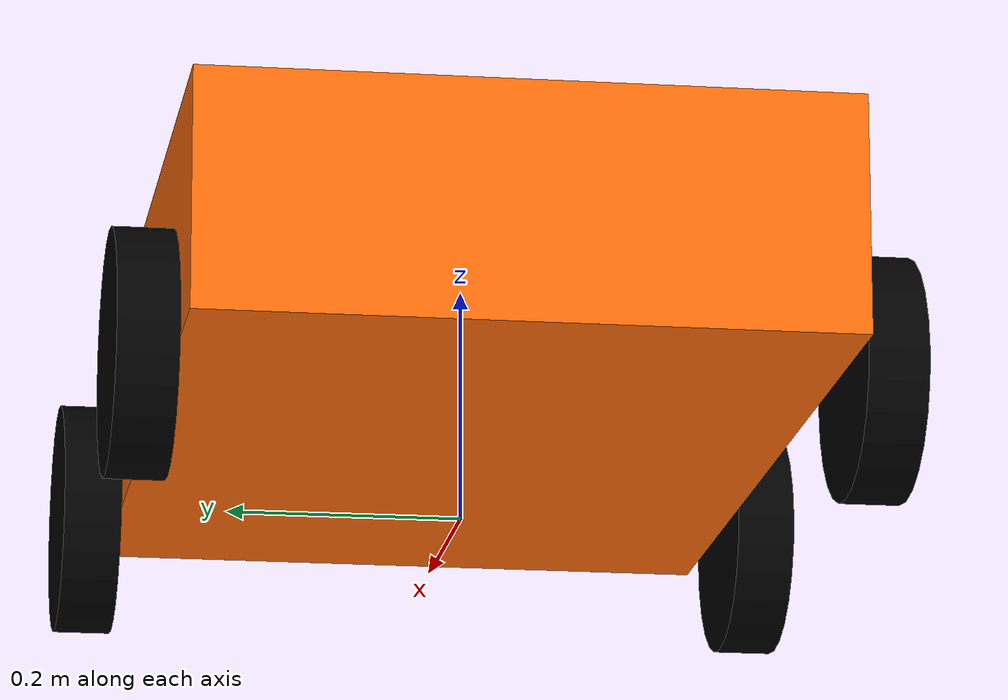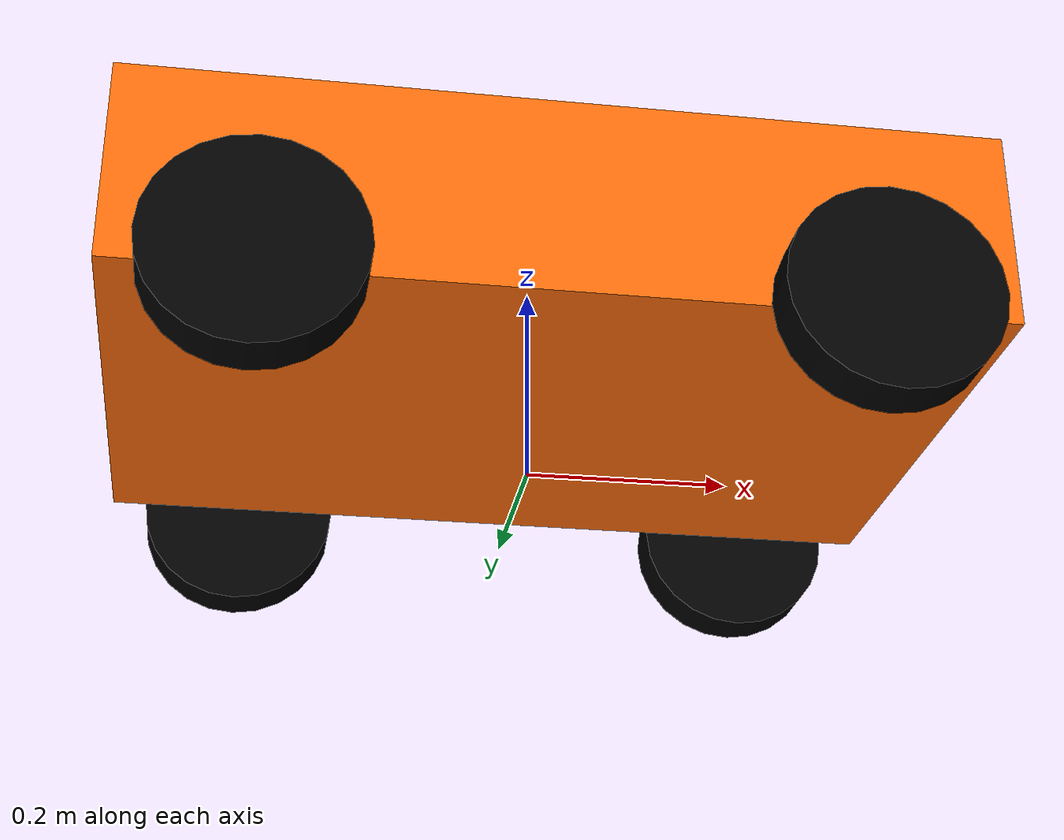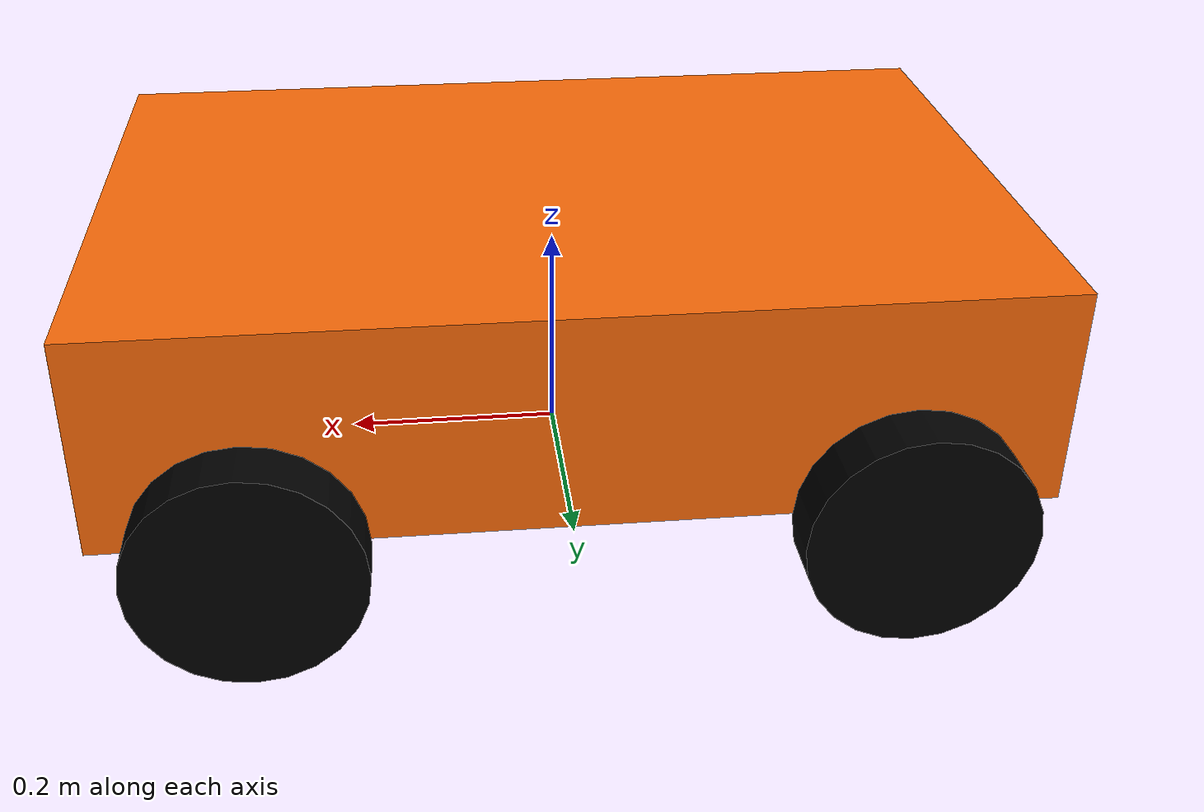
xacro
<?xml version='1.0'?>

<robot name="smartcar" xmlns:xacro="http://www.ros.org/wiki/xacro">
  <xacro:property name="cameraSize" value="0.05"/>
  <xacro:property name="cameraMass" value="0.1"/>
  <xacro:property name="body_size" value="0.832 0.542 0.20" />
  <xacro:property name="body_pos" value="0 0 0.10" />
  <xacro:property name="wheel_radius" value="0.101" />
  <xacro:property name="wheel_length" value="0.05" />
  <xacro:property name="wheel1_pos" value="0.28 0.30 0" />
  <xacro:property name="wheel2_pos" value="0.28 -0.30 0" />
  <xacro:property name="wheel3_pos" value="-0.28 0.30 0" />
  <xacro:property name="wheel4_pos" value="-0.28 -0.30 0" />
  <xacro:property name="M_PI" value="3.1415926535897931" />
  <xacro:include filename="$(find smartcar_description)/urdf/robots/smartcar.gazebo" />

 <xacro:macro name="default_inertial" params="mass">
       <inertial>
              <mass value="${mass}" />
              <inertia ixx="1.0" ixy="0.0" ixz="0.0" iyy="1.0" iyz="0.0" izz="1.0" />
      </inertial>
    </xacro:macro>

<xacro:macro name="wheel" params="wheelname position">
    <joint name="${wheelname}_joint" type="continuous">
      <parent link="base_link"/>
      <child link="${wheelname}"/>
      <origin rpy="${-M_PI/2} 0 0" xyz="${position}" />
      <axis xyz="0 0 1"/>
    </joint>
    <link name="${wheelname}">
      <visual>
        <geometry>
          <cylinder length="${wheel_length}" radius="${wheel_radius}"/>
        </geometry>
        <origin rpy="0 0 0" xyz="0 0 0"/>
        <material name="black">
          <color rgba="0 0 0 1"/>
        </material>
      </visual>
      <collision>
      <geometry>
         <cylinder length="${wheel_length}" radius="${wheel_radius}"/>
      </geometry>
      <origin rpy="0 0 0" xyz="0 0 0"/>
    </collision>
    <inertial>
      <origin  xyz="0 0 0"/>
      <mass value="0.1" />
       <inertia ixx="1.0" ixy="0.0" ixz="0.0" iyy="1.0" iyz="0.0" izz="1.0"/>
    </inertial>
    </link>
  </xacro:macro>

  <xacro:wheel wheelname="left_front_wheel" position="${wheel1_pos}"/>
  <xacro:wheel wheelname="right_front_wheel" position="${wheel2_pos}"/>
  <xacro:wheel wheelname="left_back_wheel" position="${wheel3_pos}"/>
  <xacro:wheel wheelname="right_back_wheel" position="${wheel4_pos}"/>

<link name="base_footprint">
</link>

<joint name="base_joint" type="fixed">
        <origin rpy="0 0 0"  xyz="0 0 0.058" />
        <parent link="base_footprint" />
        <child link="base_link" />
</joint>

  <link name="base_link">
        <visual>
            <geometry>
                    <box size="${body_size}"/>
            </geometry>
            <origin rpy="0 0 0" xyz="${body_pos}"/>
            <material name="orange">
                <color rgba="${255/255} ${108/255} ${10/255} 1.0"/>
            </material>
        </visual>
        <collision>
            <geometry>
                    <box size="${body_size}"/>
            </geometry>
        </collision>
        <xacro:default_inertial mass="10"/>
    </link>

  <!-- Hokuyo Laser -->

</robot>
